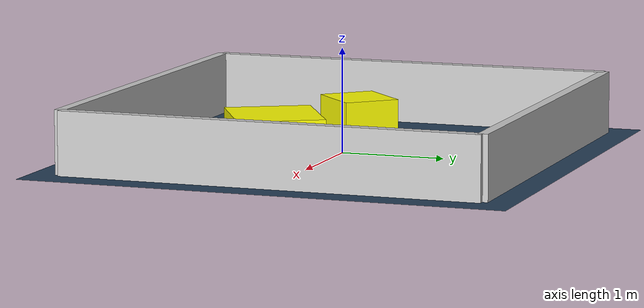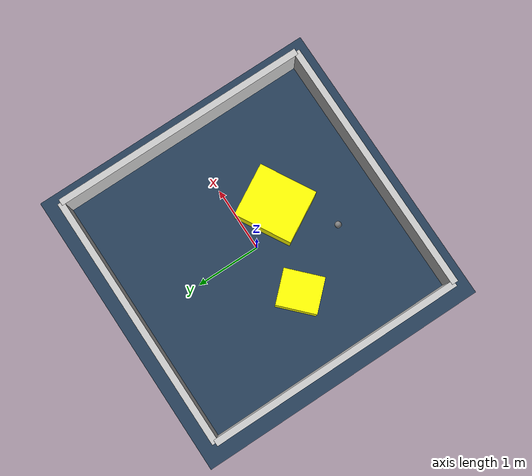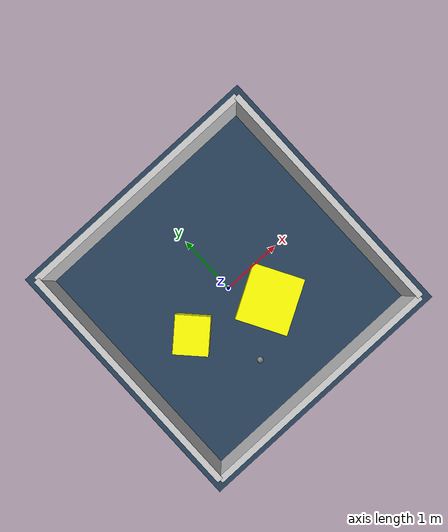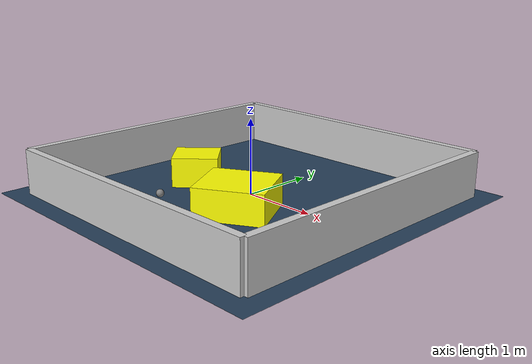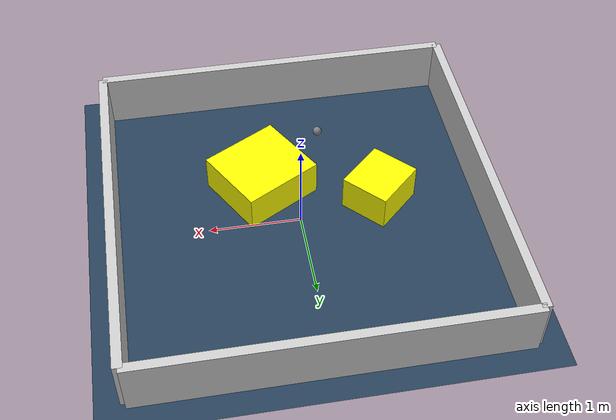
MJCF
<?xml version="1.0" ?>
<mujoco model="generated_environment">
  <option timestep="0.01" integrator="RK4" cone="elliptic"/>
  <default>
    <geom density="1"/>
  </default>
  <asset>
    <texture builtin="gradient" height="3072" rgb1="0.3 0.5 0.7" rgb2="0 0 0" type="skybox" width="512"/>
    <texture builtin="checker" height="300" mark="edge" markrgb="0.8 0.8 0.8" name="groundplane" rgb1="0.2 0.3 0.4" rgb2="0.1 0.2 0.3" type="2d" width="300"/>
    <material name="groundplane" reflectance="0.2" texrepeat="5 5" texture="groundplane" texuniform="true"/>
    <material name="robot" rgba="0.0 1.0 0.0 1"/>
  </asset>
  <worldbody>
    <light dir="0 0 -1" directional="true" pos="0 0 1.5"/>
    <geom condim="4" friction="1.0 0.005 0.001" material="groundplane" name="floor" size="0 0 0.05" type="plane"/>
    <body name="walls">
      <geom name="wall_1" condim="4" pos="-2.0 0.0 0.3" rgba="0.800000011920929 0.800000011920929 0.800000011920929 1.0" size="0.05 2.0 0.3" type="box"/>
      <geom name="wall_2" condim="4" pos="2.0 0.0 0.3" rgba="0.800000011920929 0.800000011920929 0.800000011920929 1.0" size="0.05 2.0 0.3" type="box"/>
      <geom name="wall_3" condim="4" pos="0.0 -2.0 0.3" rgba="0.800000011920929 0.800000011920929 0.800000011920929 1.0" size="2.0 0.05 0.3" type="box"/>
      <geom name="wall_4" condim="4" pos="0.0 2.0 0.3" rgba="0.800000011920929 0.800000011920929 0.800000011920929 1.0" size="2.0 0.05 0.3" type="box"/>
    </body>
    <body name="robot">
      <joint name="joint_x" type="slide" pos="0 0 0" axis="1 0 0"/>
      <joint name="joint_y" type="slide" pos="0 0 0" axis="0 1 0"/>
      <geom name="robot" type="sphere" pos="-0.38872133418232147 -1.153924382133515 0.2" size="0.05" mass="5." friction="1.0 0.005 0.0001" condim="4"/>
      <site name="sensor_ball"/>
    </body>
    <body name="obstacle_1_movable">
      <geom name="obstacle_1_movable" condim="4" pos="-0.896228565610564 -0.14790933780008464 0.2" euler="0 0 313.6071897846272" friction="1.0 0.005 0.001" rgba="1 1 0 1" size="0.2735873561995161 0.3058810121024262 0.2" type="box" mass="0.1"/>
      <joint type="free"/>
    </body>
    <body name="obstacle_2_movable">
      <geom name="obstacle_2_movable" condim="4" pos="0.35039562262188895 -0.5498373221203618 0.2" euler="0 0 29.442469722590978" friction="1.0 0.005 0.001" rgba="1 1 0 1" size="0.45071553048604046 0.4134587250465164 0.2" type="box" mass="0.1"/>
      <joint type="free"/>
    </body>
  </worldbody>
  <actuator>
    <motor name="actuator_x" joint="joint_x" gear="1" ctrlrange="-1 1"/>
    <motor name="actuator_y" joint="joint_y" gear="1" ctrlrange="-1 1"/>
  </actuator>
</mujoco>
